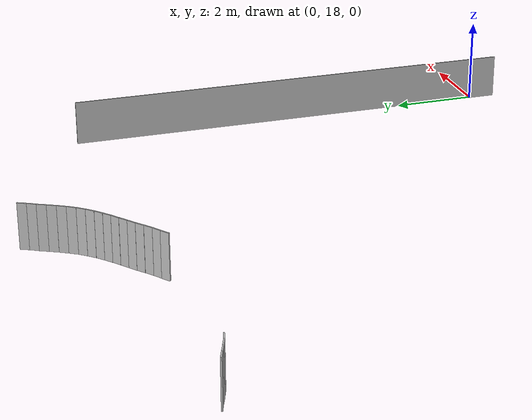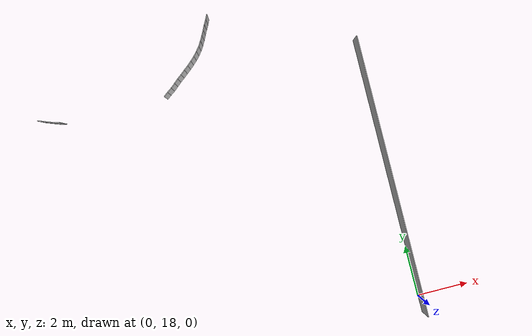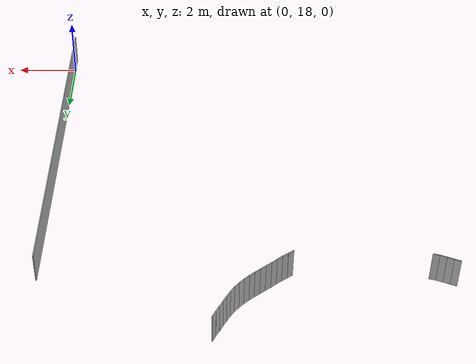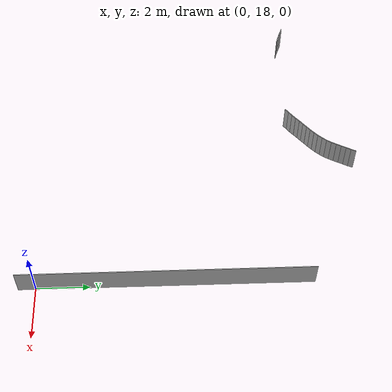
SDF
<sdf version="1.4">
 <world name="default">
  <model name="lattice_282">
   <static>1</static>
   <link name="link">
    <collision name="collision">
     <pose>0.02 0.105 0.525 0 -0 0</pose>
     <geometry><box><size>0.04 0.21 1.05</size></box></geometry>
    </collision>
    <visual name="visual"><geometry><mesh><uri>model://lattice/meshes/lattice.dae</uri></mesh></geometry></visual>
    <velocity_decay><linear>0</linear><angular>0</angular></velocity_decay>
   </link>
   <pose>-12.2892 28.1071 0 0 -0 1.21471</pose>
  </model>
  <model name="lattice_284">
   <static>1</static>
   <link name="link">
    <collision name="collision">
     <pose>0.02 0.105 0.525 0 -0 0</pose>
     <geometry><box><size>0.04 0.21 1.05</size></box></geometry>
    </collision>
    <visual name="visual"><geometry><mesh><uri>model://lattice/meshes/lattice.dae</uri></mesh></geometry></visual>
    <velocity_decay><linear>0</linear><angular>0</angular></velocity_decay>
   </link>
   <pose>-12.0926 28.03 0 0 -0 1.19906</pose>
  </model>
  <model name="lattice_286">
   <static>1</static>
   <link name="link">
    <collision name="collision">
     <pose>0.02 0.105 0.525 0 -0 0</pose>
     <geometry><box><size>0.04 0.21 1.05</size></box></geometry>
    </collision>
    <visual name="visual"><geometry><mesh><uri>model://lattice/meshes/lattice.dae</uri></mesh></geometry></visual>
    <velocity_decay><linear>0</linear><angular>0</angular></velocity_decay>
   </link>
   <pose>-11.8907 27.9574 0 0 -0 1.21367</pose>
  </model>
  <model name="lattice_287">
   <static>1</static>
   <link name="link">
    <collision name="collision">
     <pose>0.02 0.105 0.525 0 -0 0</pose>
     <geometry><box><size>0.04 0.21 1.05</size></box></geometry>
    </collision>
    <visual name="visual"><geometry><mesh><uri>model://lattice/meshes/lattice.dae</uri></mesh></geometry></visual>
    <velocity_decay><linear>0</linear><angular>0</angular></velocity_decay>
   </link>
   <pose>-11.6854 27.9033 0 0 -0 1.32053</pose>
  </model>
  <model name="lattice_309">
   <static>1</static>
   <link name="link">
    <collision name="collision">
     <pose>0.02 0.105 0.525 0 -0 0</pose>
     <geometry><box><size>0.04 0.21 1.05</size></box></geometry>
    </collision>
    <visual name="visual"><geometry><mesh><uri>model://lattice/meshes/lattice.dae</uri></mesh></geometry></visual>
    <velocity_decay><linear>0</linear><angular>0</angular></velocity_decay>
   </link>
   <pose>-6.45201 28.7935 0 0 -0 2.23524</pose>
  </model>
  <model name="lattice_310">
   <static>1</static>
   <link name="link">
    <collision name="collision">
     <pose>0.02 0.105 0.525 0 -0 0</pose>
     <geometry><box><size>0.04 0.21 1.05</size></box></geometry>
    </collision>
    <visual name="visual"><geometry><mesh><uri>model://lattice/meshes/lattice.dae</uri></mesh></geometry></visual>
    <velocity_decay><linear>0</linear><angular>0</angular></velocity_decay>
   </link>
   <pose>-6.94274 28.4025 0 0 -0 2.27051</pose>
  </model>
  <model name="lattice_311">
   <static>1</static>
   <link name="link">
    <collision name="collision">
     <pose>0.02 0.105 0.525 0 -0 0</pose>
     <geometry><box><size>0.04 0.21 1.05</size></box></geometry>
    </collision>
    <visual name="visual"><geometry><mesh><uri>model://lattice/meshes/lattice.dae</uri></mesh></geometry></visual>
    <velocity_decay><linear>0</linear><angular>0</angular></velocity_decay>
   </link>
   <pose>-7.45187 28.0336 0 0 0 -0.953021</pose>
  </model>
  <model name="lattice_312">
   <static>1</static>
   <link name="link">
    <collision name="collision">
     <pose>0.02 0.105 0.525 0 -0 0</pose>
     <geometry><box><size>0.04 0.21 1.05</size></box></geometry>
    </collision>
    <visual name="visual"><geometry><mesh><uri>model://lattice/meshes/lattice.dae</uri></mesh></geometry></visual>
    <velocity_decay><linear>0</linear><angular>0</angular></velocity_decay>
   </link>
   <pose>-7.61783 27.9063 0 0 0 -0.899923</pose>
  </model>
  <model name="lattice_313">
   <static>1</static>
   <link name="link">
    <collision name="collision">
     <pose>0.02 0.105 0.525 0 -0 0</pose>
     <geometry><box><size>0.04 0.21 1.05</size></box></geometry>
    </collision>
    <visual name="visual"><geometry><mesh><uri>model://lattice/meshes/lattice.dae</uri></mesh></geometry></visual>
    <velocity_decay><linear>0</linear><angular>0</angular></velocity_decay>
   </link>
   <pose>-6.61446 28.6625 0 0 -0 2.24333</pose>
  </model>
  <model name="lattice_314">
   <static>1</static>
   <link name="link">
    <collision name="collision">
     <pose>0.02 0.105 0.525 0 -0 0</pose>
     <geometry><box><size>0.04 0.21 1.05</size></box></geometry>
    </collision>
    <visual name="visual"><geometry><mesh><uri>model://lattice/meshes/lattice.dae</uri></mesh></geometry></visual>
    <velocity_decay><linear>0</linear><angular>0</angular></velocity_decay>
   </link>
   <pose>-6.29471 28.9329 0 0 -0 2.29245</pose>
  </model>
  <model name="lattice_315">
   <static>1</static>
   <link name="link">
    <collision name="collision">
     <pose>0.02 0.105 0.525 0 -0 0</pose>
     <geometry><box><size>0.04 0.21 1.05</size></box></geometry>
    </collision>
    <visual name="visual"><geometry><mesh><uri>model://lattice/meshes/lattice.dae</uri></mesh></geometry></visual>
    <velocity_decay><linear>0</linear><angular>0</angular></velocity_decay>
   </link>
   <pose>-6.78045 28.5303 0 0 -0 2.23012</pose>
  </model>
  <model name="lattice_316">
   <static>1</static>
   <link name="link">
    <collision name="collision">
     <pose>0.02 0.105 0.525 0 -0 0</pose>
     <geometry><box><size>0.04 0.21 1.05</size></box></geometry>
    </collision>
    <visual name="visual"><geometry><mesh><uri>model://lattice/meshes/lattice.dae</uri></mesh></geometry></visual>
    <velocity_decay><linear>0</linear><angular>0</angular></velocity_decay>
   </link>
   <pose>-7.10114 28.2644 0 0 -0 2.25623</pose>
  </model>
  <model name="lattice_317">
   <static>1</static>
   <link name="link">
    <collision name="collision">
     <pose>0.02 0.105 0.525 0 -0 0</pose>
     <geometry><box><size>0.04 0.21 1.05</size></box></geometry>
    </collision>
    <visual name="visual"><geometry><mesh><uri>model://lattice/meshes/lattice.dae</uri></mesh></geometry></visual>
    <velocity_decay><linear>0</linear><angular>0</angular></velocity_decay>
   </link>
   <pose>-6.14505 29.0715 0 0 -0 2.31126</pose>
  </model>
  <model name="lattice_318">
   <static>1</static>
   <link name="link">
    <collision name="collision">
     <pose>0.02 0.105 0.525 0 -0 0</pose>
     <geometry><box><size>0.04 0.21 1.05</size></box></geometry>
    </collision>
    <visual name="visual"><geometry><mesh><uri>model://lattice/meshes/lattice.dae</uri></mesh></geometry></visual>
    <velocity_decay><linear>0</linear><angular>0</angular></velocity_decay>
   </link>
   <pose>-6.00332 29.2299 0 0 -0 2.40464</pose>
  </model>
  <model name="lattice_319">
   <static>1</static>
   <link name="link">
    <collision name="collision">
     <pose>0.02 0.105 0.525 0 -0 0</pose>
     <geometry><box><size>0.04 0.21 1.05</size></box></geometry>
    </collision>
    <visual name="visual"><geometry><mesh><uri>model://lattice/meshes/lattice.dae</uri></mesh></geometry></visual>
    <velocity_decay><linear>0</linear><angular>0</angular></velocity_decay>
   </link>
   <pose>-5.65297 29.7579 0 0 -0 2.62692</pose>
  </model>
  <model name="lattice_320">
   <static>1</static>
   <link name="link">
    <collision name="collision">
     <pose>0.02 0.105 0.525 0 -0 0</pose>
     <geometry><box><size>0.04 0.21 1.05</size></box></geometry>
    </collision>
    <visual name="visual"><geometry><mesh><uri>model://lattice/meshes/lattice.dae</uri></mesh></geometry></visual>
    <velocity_decay><linear>0</linear><angular>0</angular></velocity_decay>
   </link>
   <pose>-5.75849 29.5719 0 0 -0 2.57591</pose>
  </model>
  <model name="lattice_321">
   <static>1</static>
   <link name="link">
    <collision name="collision">
     <pose>0.02 0.105 0.525 0 -0 0</pose>
     <geometry><box><size>0.04 0.21 1.05</size></box></geometry>
    </collision>
    <visual name="visual"><geometry><mesh><uri>model://lattice/meshes/lattice.dae</uri></mesh></geometry></visual>
    <velocity_decay><linear>0</linear><angular>0</angular></velocity_decay>
   </link>
   <pose>-5.87253 29.3912 0 0 -0 2.45418</pose>
  </model>
  <model name="lattice_322">
   <static>1</static>
   <link name="link">
    <collision name="collision">
     <pose>0.02 0.105 0.525 0 -0 0</pose>
     <geometry><box><size>0.04 0.21 1.05</size></box></geometry>
    </collision>
    <visual name="visual"><geometry><mesh><uri>model://lattice/meshes/lattice.dae</uri></mesh></geometry></visual>
    <velocity_decay><linear>0</linear><angular>0</angular></velocity_decay>
   </link>
   <pose>-5.55593 29.9473 0 0 -0 2.66337</pose>
  </model>
  <model name="lattice_323">
   <static>1</static>
   <link name="link">
    <collision name="collision">
     <pose>0.02 0.105 0.525 0 -0 0</pose>
     <geometry><box><size>0.04 0.21 1.05</size></box></geometry>
    </collision>
    <visual name="visual"><geometry><mesh><uri>model://lattice/meshes/lattice.dae</uri></mesh></geometry></visual>
    <velocity_decay><linear>0</linear><angular>0</angular></velocity_decay>
   </link>
   <pose>-5.46255 30.1387 0 0 -0 2.68677</pose>
  </model>
  <model name="lattice_325">
   <static>1</static>
   <link name="link">
    <collision name="collision">
     <pose>0.02 0.105 0.525 0 -0 0</pose>
     <geometry><box><size>0.04 0.21 1.05</size></box></geometry>
    </collision>
    <visual name="visual"><geometry><mesh><uri>model://lattice/meshes/lattice.dae</uri></mesh></geometry></visual>
    <velocity_decay><linear>0</linear><angular>0</angular></velocity_decay>
   </link>
   <pose>-5.36221 30.3202 0 0 -0 2.66336</pose>
  </model>
  <model name="lattice_326">
   <static>1</static>
   <link name="link">
    <collision name="collision">
     <pose>0.02 0.105 0.525 0 -0 0</pose>
     <geometry><box><size>0.04 0.21 1.05</size></box></geometry>
    </collision>
    <visual name="visual"><geometry><mesh><uri>model://lattice/meshes/lattice.dae</uri></mesh></geometry></visual>
    <velocity_decay><linear>0</linear><angular>0</angular></velocity_decay>
   </link>
   <pose>-5.27192 30.508 0 0 -0 2.69814</pose>
  </model>
  <model name="lattice_large_6">
   <static>1</static>
   <link name="link">
    <collision name="collision">
     <geometry><mesh><uri>model://lattice_large/meshes/lattice_large.dae</uri></mesh></geometry>
    </collision>
    <visual name="visual">
     <geometry><mesh><uri>model://lattice_large/meshes/lattice_large.dae</uri></mesh></geometry>
    </visual>
    <velocity_decay><linear>0</linear><angular>0</angular></velocity_decay>
   </link>
   <pose>0 28.1253 0 0 -0 0</pose>
  </model>
 </world>
</sdf>
